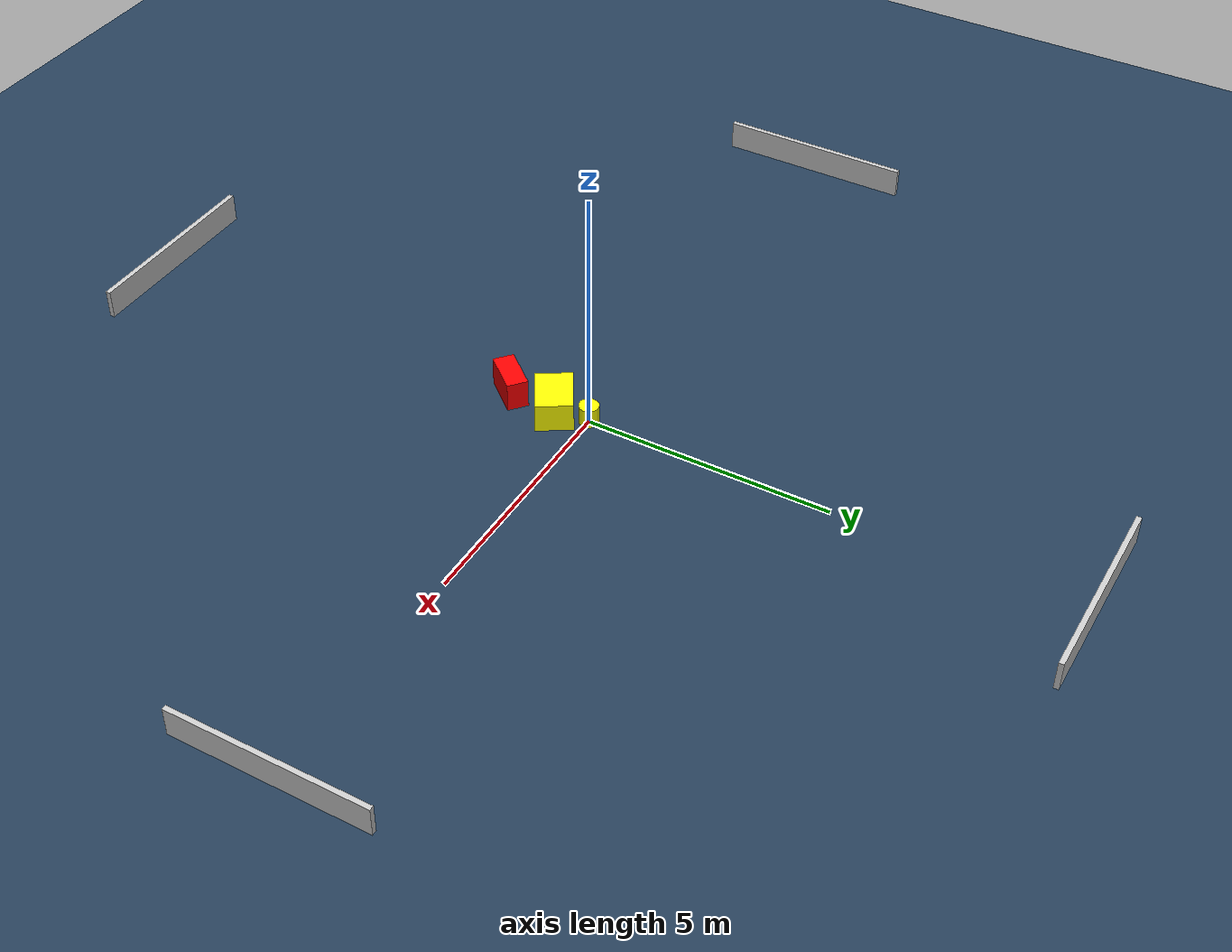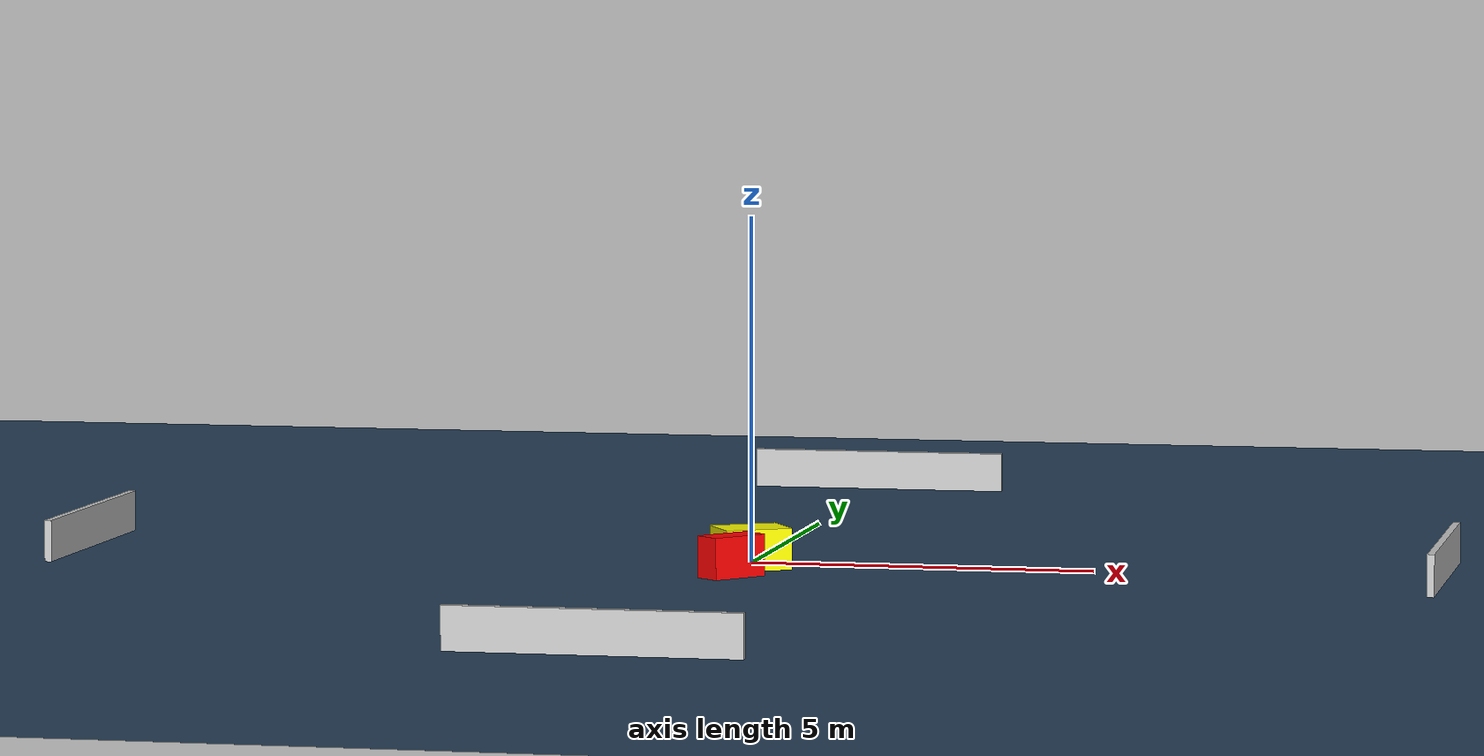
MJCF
<?xml version="1.0" ?>
<mujoco model="generated_environment">
  <option timestep="0.01" integrator="RK4" cone="elliptic"/>
  <default>
    <geom density="1"/>
  </default>
  <asset>
    <texture builtin="gradient" height="3072" name="skybox" rgb1="0.3 0.5 0.7" rgb2="0 0 0" type="skybox" width="512"/>
    <texture builtin="checker" height="300" name="groundplane" rgb1="0.2 0.3 0.4" rgb2="0.1 0.2 0.3" type="2d" width="300"/>
    <material name="groundplane" reflectance="0.2" texrepeat="5 5" texture="groundplane"/>
  </asset>
  <worldbody>
    <light dir="0 0 -1" directional="true" pos="0 0 1.5"/>
    <geom condim="3" friction="0.5 0.005 0.001" material="groundplane" name="floor" pos="0 0 0" size="0 0 0.05" type="plane"/>
    <body name="walls">
      <geom name="wall_1" condim="4" pos="-10.0 0.0 0.3" rgba="0.800000011920929 0.800000011920929 0.800000011920929 1.0" size="0.05 2.0 0.3" type="box"/>
      <geom name="wall_2" condim="4" pos="10.0 0.0 0.3" rgba="0.800000011920929 0.800000011920929 0.800000011920929 1.0" size="0.05 2.0 0.3" type="box"/>
      <geom name="wall_3" condim="4" pos="0.0 -10.0 0.3" rgba="0.800000011920929 0.800000011920929 0.800000011920929 1.0" size="2.0 0.05 0.3" type="box"/>
      <geom name="wall_4" condim="4" pos="0.0 10.0 0.3" rgba="0.800000011920929 0.800000011920929 0.800000011920929 1.0" size="2.0 0.05 0.3" type="box"/>
    </body>
    <body name="robot">
      <joint name="joint_x" type="slide" pos="0 0 0" axis="1 0 0"/>
      <joint name="joint_y" type="slide" pos="0 0 0" axis="0 1 0"/>
      <geom name="robot" type="cylinder" pos="0.0 0.0 0.2" size="0.2 0.2 0.0" mass="5.0" friction="1.0 0.005 0.0001" condim="4" rgba="1.0 1.0 0.0 1.0"/>
    </body>
    <body name="obstacle_1_movable">
      <geom name="obstacle_1_movable" condim="4" pos="0.13633765051874072 -0.6861342395663828 0.3" euler="0 0 300.9502931456167" friction="0.0 0.005 0.001" rgba="1.0 1.0 0.0 1.0" size="0.37020955188694255 0.49387844874505116 0.3" type="box" mass="0.1"/>
      <joint type="free"/>
    </body>
    <body name="obstacle_2_static">
      <geom name="obstacle_2_static" condim="4" pos="0.057238905402726054 -1.7035317771794654 0.3" euler="0 0 139.9765857393267" friction="0.0 0.005 0.001" rgba="1.0 0.0 0.0 1.0" size="0.21228475244394476 0.43771308298406114 0.3" type="box"/>
    </body>
  </worldbody>
  <actuator>
    <motor name="actuator_x" joint="joint_x" gear="1" ctrlrange="-1 1"/>
    <motor name="actuator_y" joint="joint_y" gear="1" ctrlrange="-1 1"/>
  </actuator>
</mujoco>
